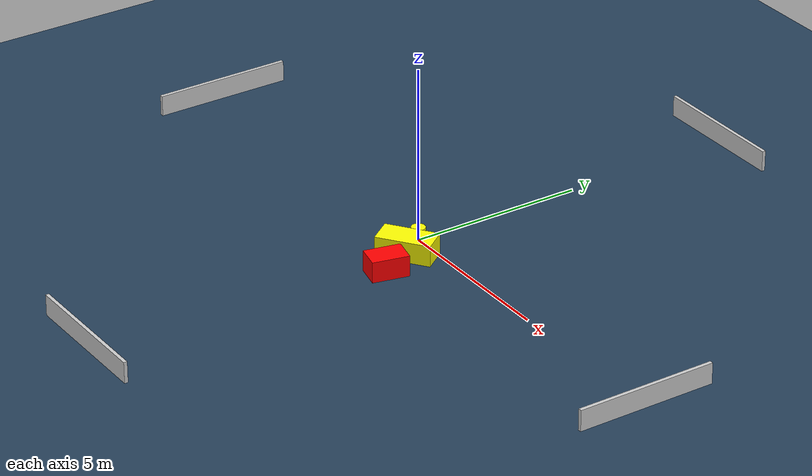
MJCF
<?xml version="1.0" ?>
<mujoco model="generated_environment">
  <option timestep="0.01" integrator="RK4" cone="elliptic"/>
  <default>
    <geom density="1"/>
  </default>
  <asset>
    <texture builtin="gradient" height="3072" name="skybox" rgb1="0.3 0.5 0.7" rgb2="0 0 0" type="skybox" width="512"/>
    <texture builtin="checker" height="300" name="groundplane" rgb1="0.2 0.3 0.4" rgb2="0.1 0.2 0.3" type="2d" width="300"/>
    <material name="groundplane" reflectance="0.2" texrepeat="5 5" texture="groundplane"/>
  </asset>
  <worldbody>
    <light dir="0 0 -1" directional="true" pos="0 0 1.5"/>
    <geom condim="3" friction="0.5 0.005 0.001" material="groundplane" name="floor" pos="0 0 0" size="0 0 0.05" type="plane"/>
    <body name="walls">
      <geom name="wall_1" condim="4" pos="-10.0 0.0 0.3" rgba="0.800000011920929 0.800000011920929 0.800000011920929 1.0" size="0.05 2.0 0.3" type="box"/>
      <geom name="wall_2" condim="4" pos="10.0 0.0 0.3" rgba="0.800000011920929 0.800000011920929 0.800000011920929 1.0" size="0.05 2.0 0.3" type="box"/>
      <geom name="wall_3" condim="4" pos="0.0 -10.0 0.3" rgba="0.800000011920929 0.800000011920929 0.800000011920929 1.0" size="2.0 0.05 0.3" type="box"/>
      <geom name="wall_4" condim="4" pos="0.0 10.0 0.3" rgba="0.800000011920929 0.800000011920929 0.800000011920929 1.0" size="2.0 0.05 0.3" type="box"/>
    </body>
    <body name="robot">
      <joint name="joint_x" type="slide" pos="0 0 0" axis="1 0 0"/>
      <joint name="joint_y" type="slide" pos="0 0 0" axis="0 1 0"/>
      <geom name="robot" type="cylinder" pos="0.0 0.0 0.2" size="0.2 0.2 0.0" mass="5.0" friction="1.0 0.005 0.0001" condim="4" rgba="1.0 1.0 0.0 1.0"/>
    </body>
    <body name="obstacle_1_movable">
      <geom name="obstacle_1_movable" condim="4" pos="0.5110988866137689 -0.6849418704540677 0.3" euler="0 0 126.19849273096844" friction="0.0 0.005 0.001" rgba="1.0 1.0 0.0 1.0" size="0.38844447691301703 0.7744467108768975 0.3" type="box" mass="0.1"/>
      <joint type="free"/>
    </body>
    <body name="obstacle_2_static">
      <geom name="obstacle_2_static" condim="4" pos="1.012166850729243 -1.6701952573908596 0.3" euler="0 0 347.2829551915558" friction="0.0 0.005 0.001" rgba="1.0 0.0 0.0 1.0" size="0.3501674674478886 0.5196118454002743 0.3" type="box"/>
    </body>
  </worldbody>
  <actuator>
    <motor name="actuator_x" joint="joint_x" gear="1" ctrlrange="-1 1"/>
    <motor name="actuator_y" joint="joint_y" gear="1" ctrlrange="-1 1"/>
  </actuator>
</mujoco>
